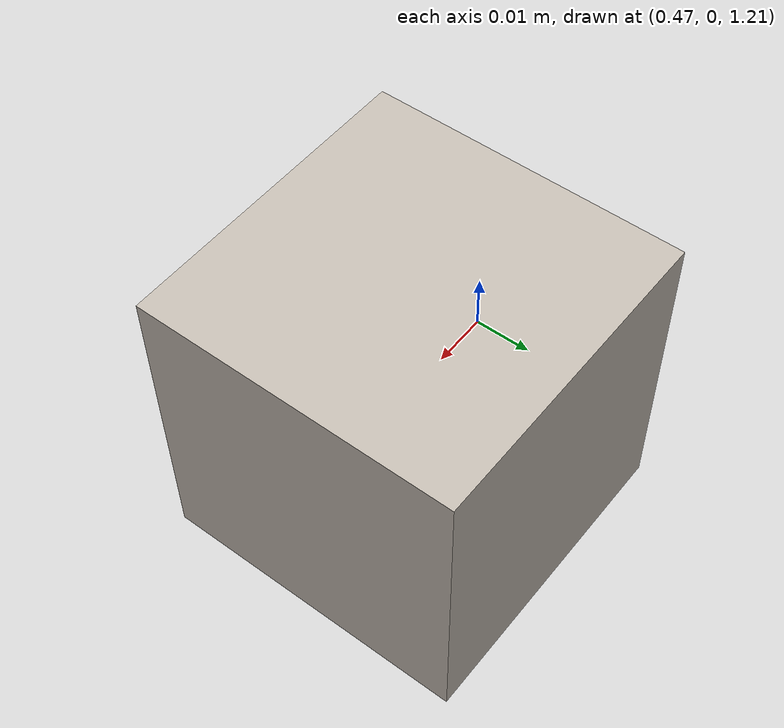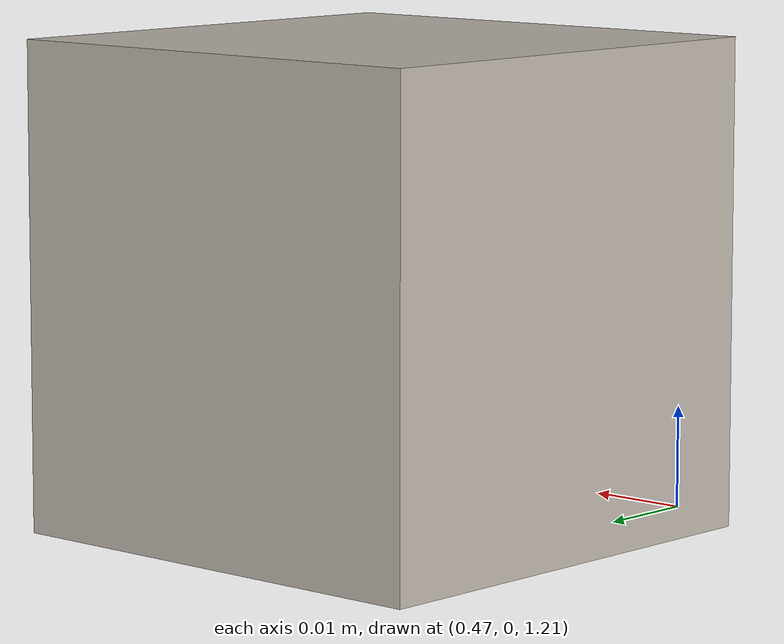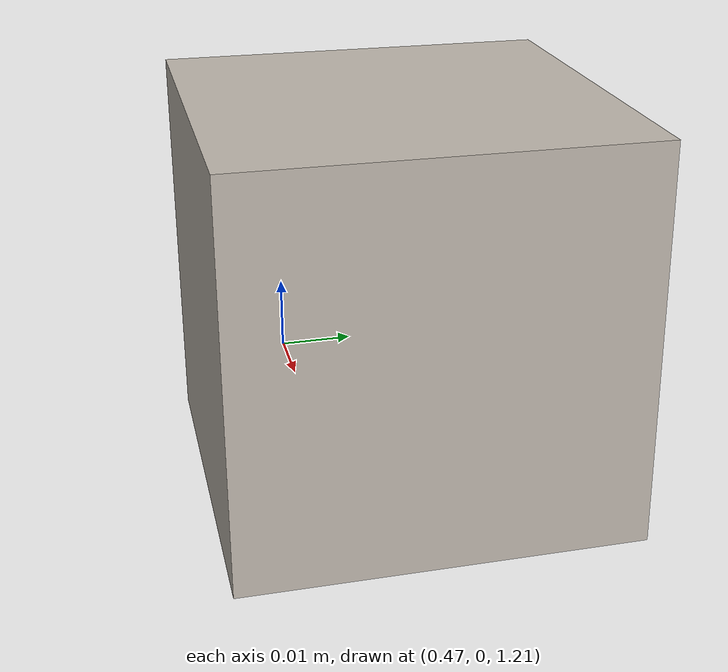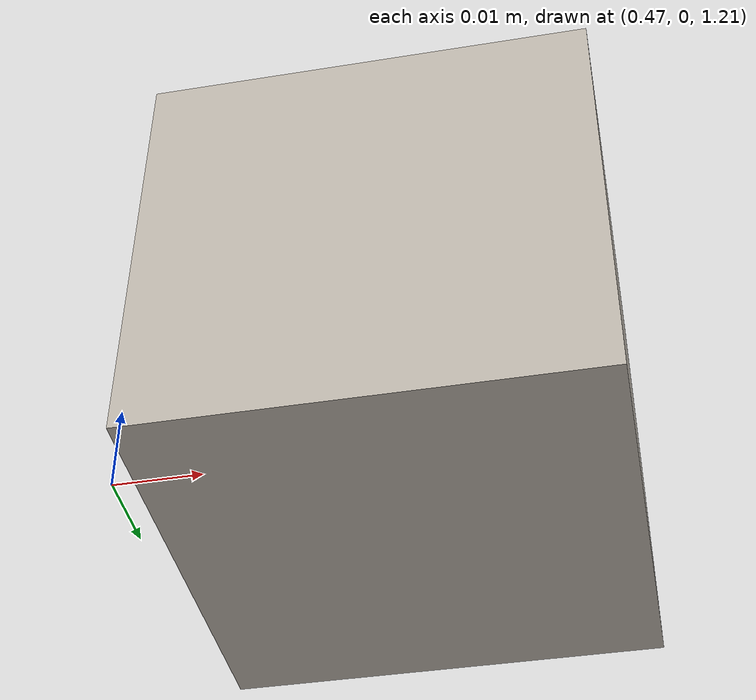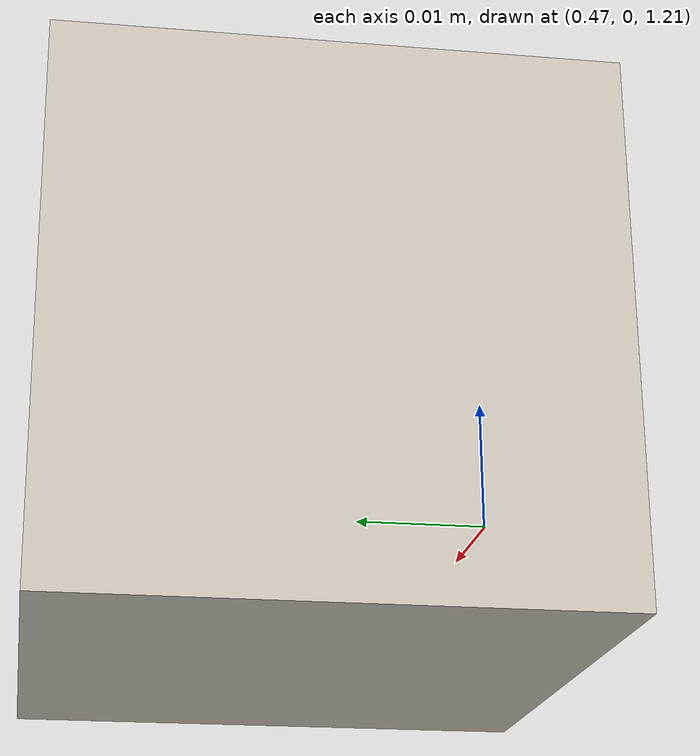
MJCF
<mujoco model="erwin_cube_blender">
  <default>
    <default class="erwin_cube_blender_visual">
      <geom group="2" type="mesh" contype="0" conaffinity="0"/>
    </default>
    <default class="erwin_cube_blender_collision">
      <geom group="3" type="mesh" solref="0.004" solimp="0.95 0.98" condim="6" contype="1" conaffinity="1"/>
    </default>
  </default>
  <asset>
    <texture type="2d" name="shaded_cube" file="real2sim/erwin_cube_blender/cube_texture.png"/>
    <material name="erwin_cube_material.001" texture="shaded_cube" specular="0.5" shininess="0.5"/>
    <mesh file="real2sim/erwin_cube_blender/cube_1_texture_meter_units.obj" name="erwin_cube_blender_visual_0" scale="1 1 1"/>
    <mesh file="real2sim/erwin_cube_blender/cube_1_texture_meter_units.obj" name="erwin_cube_blender_collision" scale="1 1 1" />
  </asset>
  <worldbody>
    <body name="erwin_cube_blender" pos="0.5 0.01 1.23">
      <freejoint/>
      <geom material="erwin_cube_material.001" mesh="erwin_cube_blender_visual_0" class="erwin_cube_blender_visual"/>
      <geom mesh="erwin_cube_blender_collision" rgba="1 1 1 0" class="erwin_cube_blender_collision" mass="0.5"/>
    </body>
  </worldbody>
</mujoco>
